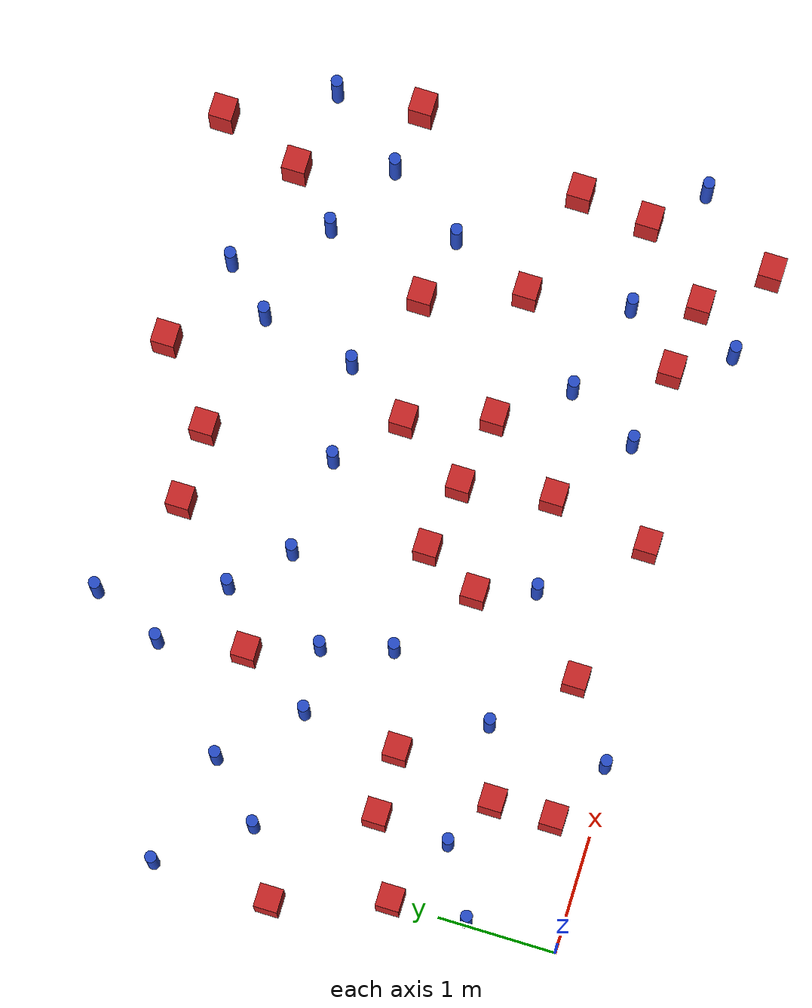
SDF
<sdf version="1.6">
 <model name="dense_91">
  <model name="pole_obstacle7">
   <static>true</static>
   <pose>1.28148390467 2.54067466043 -9.47619616065e-06 5.49618799737e-07 2.36310414062e-07 -1.55090534798e-07</pose>
   <link name="link">
    <pose>0 0 0.3 0 -0 0</pose>
    <inertial>
     <mass>1</mass>
     <inertia><ixx>0.145833</ixx><ixy>0</ixy><ixz>0</ixz><iyy>0.145833</iyy><iyz>0</iyz><izz>0.125</izz></inertia>
    </inertial>
    <collision name="collision">
     <geometry><cylinder><radius>0.05</radius><length>.6</length></cylinder></geometry>
    </collision>
    <visual name="visual">
     <geometry><cylinder><radius>0.05</radius><length>.6</length></cylinder></geometry>
     <material>
      <script><name>Gazebo/Blue</name><uri>file://media/materials/scripts/gazebo.material</uri></script>
     </material>
    </visual>
   </link>
  </model>
  <model name="pole_obstacle8">
   <static>true</static>
   <pose>4.49271938072 1.20656076858 -9.47619616065e-06 5.49618799738e-07 2.36310414071e-07 -1.55090534796e-07</pose>
   <link name="link">
    <pose>0 0 0.3 0 -0 0</pose>
    <inertial>
     <mass>1</mass>
     <inertia><ixx>0.145833</ixx><ixy>0</ixy><ixz>0</ixz><iyy>0.145833</iyy><iyz>0</iyz><izz>0.125</izz></inertia>
    </inertial>
    <collision name="collision">
     <geometry><cylinder><radius>0.05</radius><length>.6</length></cylinder></geometry>
    </collision>
    <visual name="visual">
     <geometry><cylinder><radius>0.05</radius><length>.6</length></cylinder></geometry>
     <material>
      <script><name>Gazebo/Blue</name><uri>file://media/materials/scripts/gazebo.material</uri></script>
     </material>
    </visual>
   </link>
  </model>
  <model name="square_post_obstacle8">
   <static>true</static>
   <pose>-0.286140557793 2.35264386809 -6.11067671241e-07 -5.50515727128e-06 -8.79689657224e-07 2.37013304536e-05</pose>
   <link name="link">
    <pose>0 0 0.25 0 -0 0</pose>
    <inertial>
     <mass>100</mass>
     <inertia>
      <ixx>0.166667</ixx>
      <ixy>0</ixy>
      <ixz>0</ixz>
      <iyy>0.166667</iyy>
      <iyz>0</iyz>
      <izz>0.166667</izz>
     </inertia>
    </inertial>
    <collision name="collision"><geometry><box><size>.2 .2 .5</size></box></geometry></collision>
    <visual name="visual">
     <geometry><box><size>.2 .2 .5</size></box></geometry>
     <material>
      <script><name>Gazebo/Red</name><uri>file://media/materials/scripts/gazebo.material</uri></script>
     </material>
    </visual>
   </link>
  </model>
  <model name="square_post_obstacle9">
   <static>true</static>
   <pose>3.46107579116 1.86878623679 -6.11067671241e-07 -5.50515727128e-06 -8.79689657224e-07 2.37013304536e-05</pose>
   <link name="link">
    <pose>0 0 0.25 0 -0 0</pose>
    <inertial>
     <mass>100</mass>
     <inertia>
      <ixx>0.166667</ixx>
      <ixy>0</ixy>
      <ixz>0</ixz>
      <iyy>0.166667</iyy>
      <iyz>0</iyz>
      <izz>0.166667</izz>
     </inertia>
    </inertial>
    <collision name="collision"><geometry><box><size>.2 .2 .5</size></box></geometry></collision>
    <visual name="visual">
     <geometry><box><size>.2 .2 .5</size></box></geometry>
     <material>
      <script><name>Gazebo/Red</name><uri>file://media/materials/scripts/gazebo.material</uri></script>
     </material>
    </visual>
   </link>
  </model>
  <model name="square_post_obstacle15">
   <static>true</static>
   <pose>2.18290450991 0.485048576799 -6.11067671241e-07 -5.50515727128e-06 -8.79689657224e-07 2.37013304536e-05</pose>
   <link name="link">
    <pose>0 0 0.25 0 -0 0</pose>
    <inertial>
     <mass>100</mass>
     <inertia>
      <ixx>0.166667</ixx>
      <ixy>0</ixy>
      <ixz>0</ixz>
      <iyy>0.166667</iyy>
      <iyz>0</iyz>
      <izz>0.166667</izz>
     </inertia>
    </inertial>
    <collision name="collision"><geometry><box><size>.2 .2 .5</size></box></geometry></collision>
    <visual name="visual">
     <geometry><box><size>.2 .2 .5</size></box></geometry>
     <material>
      <script><name>Gazebo/Red</name><uri>file://media/materials/scripts/gazebo.material</uri></script>
     </material>
    </visual>
   </link>
  </model>
  <model name="square_post_obstacle18">
   <static>true</static>
   <pose>5.16448898681 1.8074265908 -6.11067671241e-07 -5.50515727128e-06 -8.79689657224e-07 2.37013304536e-05</pose>
   <link name="link">
    <pose>0 0 0.25 0 -0 0</pose>
    <inertial>
     <mass>100</mass>
     <inertia>
      <ixx>0.166667</ixx>
      <ixy>0</ixy>
      <ixz>0</ixz>
      <iyy>0.166667</iyy>
      <iyz>0</iyz>
      <izz>0.166667</izz>
     </inertia>
    </inertial>
    <collision name="collision"><geometry><box><size>.2 .2 .5</size></box></geometry></collision>
    <visual name="visual">
     <geometry><box><size>.2 .2 .5</size></box></geometry>
     <material>
      <script><name>Gazebo/Red</name><uri>file://media/materials/scripts/gazebo.material</uri></script>
     </material>
    </visual>
   </link>
  </model>
  <model name="pole_obstacle26">
   <static>true</static>
   <pose>6.34294631568 3.81378350283 -9.47619616065e-06 5.49618799738e-07 2.36310414051e-07 -1.55090534805e-07</pose>
   <link name="link">
    <pose>0 0 0.3 0 -0 0</pose>
    <inertial>
     <mass>1</mass>
     <inertia><ixx>0.145833</ixx><ixy>0</ixy><ixz>0</ixz><iyy>0.145833</iyy><iyz>0</iyz><izz>0.125</izz></inertia>
    </inertial>
    <collision name="collision">
     <geometry><cylinder><radius>0.05</radius><length>.6</length></cylinder></geometry>
    </collision>
    <visual name="visual">
     <geometry><cylinder><radius>0.05</radius><length>.6</length></cylinder></geometry>
     <material>
      <script><name>Gazebo/Blue</name><uri>file://media/materials/scripts/gazebo.material</uri></script>
     </material>
    </visual>
   </link>
  </model>
  <model name="pole_obstacle30">
   <static>true</static>
   <pose>-0.254075386701 3.35910105093 -9.47619616065e-06 5.49618799738e-07 2.36310414071e-07 -1.55090534795e-07</pose>
   <link name="link">
    <pose>0 0 0.3 0 -0 0</pose>
    <inertial>
     <mass>1</mass>
     <inertia><ixx>0.145833</ixx><ixy>0</ixy><ixz>0</ixz><iyy>0.145833</iyy><iyz>0</iyz><izz>0.125</izz></inertia>
    </inertial>
    <collision name="collision">
     <geometry><cylinder><radius>0.05</radius><length>.6</length></cylinder></geometry>
    </collision>
    <visual name="visual">
     <geometry><cylinder><radius>0.05</radius><length>.6</length></cylinder></geometry>
     <material>
      <script><name>Gazebo/Blue</name><uri>file://media/materials/scripts/gazebo.material</uri></script>
     </material>
    </visual>
   </link>
  </model>
  <model name="square_post_obstacle23">
   <static>true</static>
   <pose>6.03022967754 1.00688846169 -6.11067671241e-07 -5.50515727128e-06 -8.79689657224e-07 2.37013304536e-05</pose>
   <link name="link">
    <pose>0 0 0.25 0 -0 0</pose>
    <inertial>
     <mass>100</mass>
     <inertia>
      <ixx>0.166667</ixx>
      <ixy>0</ixy>
      <ixz>0</ixz>
      <iyy>0.166667</iyy>
      <iyz>0</iyz>
      <izz>0.166667</izz>
     </inertia>
    </inertial>
    <collision name="collision"><geometry><box><size>.2 .2 .5</size></box></geometry></collision>
    <visual name="visual">
     <geometry><box><size>.2 .2 .5</size></box></geometry>
     <material>
      <script><name>Gazebo/Red</name><uri>file://media/materials/scripts/gazebo.material</uri></script>
     </material>
    </visual>
   </link>
  </model>
  <model name="square_post_obstacle24">
   <static>true</static>
   <pose>3.91992662925 4.54840092076 -6.11067671241e-07 -5.50515727128e-06 -8.79689657224e-07 2.37013304536e-05</pose>
   <link name="link">
    <pose>0 0 0.25 0 -0 0</pose>
    <inertial>
     <mass>100</mass>
     <inertia>
      <ixx>0.166667</ixx>
      <ixy>0</ixy>
      <ixz>0</ixz>
      <iyy>0.166667</iyy>
      <iyz>0</iyz>
      <izz>0.166667</izz>
     </inertia>
    </inertial>
    <collision name="collision"><geometry><box><size>.2 .2 .5</size></box></geometry></collision>
    <visual name="visual">
     <geometry><box><size>.2 .2 .5</size></box></geometry>
     <material>
      <script><name>Gazebo/Red</name><uri>file://media/materials/scripts/gazebo.material</uri></script>
     </material>
    </visual>
   </link>
  </model>
  <model name="pole_obstacle32">
   <static>true</static>
   <pose>4.70250894712 4.22878262935 -9.47619616065e-06 5.49618799737e-07 2.36310414037e-07 -1.55090534814e-07</pose>
   <link name="link">
    <pose>0 0 0.3 0 -0 0</pose>
    <inertial>
     <mass>1</mass>
     <inertia><ixx>0.145833</ixx><ixy>0</ixy><ixz>0</ixz><iyy>0.145833</iyy><iyz>0</iyz><izz>0.125</izz></inertia>
    </inertial>
    <collision name="collision">
     <geometry><cylinder><radius>0.05</radius><length>.6</length></cylinder></geometry>
    </collision>
    <visual name="visual">
     <geometry><cylinder><radius>0.05</radius><length>.6</length></cylinder></geometry>
     <material>
      <script><name>Gazebo/Blue</name><uri>file://media/materials/scripts/gazebo.material</uri></script>
     </material>
    </visual>
   </link>
  </model>
  <model name="pole_obstacle51">
   <static>true</static>
   <pose>3.35716697785 2.93258683462 -9.47619616065e-06 5.49618799737e-07 2.36310414051e-07 -1.55090534807e-07</pose>
   <link name="link">
    <pose>0 0 0.3 0 -0 0</pose>
    <inertial>
     <mass>1</mass>
     <inertia><ixx>0.145833</ixx><ixy>0</ixy><ixz>0</ixz><iyy>0.145833</iyy><iyz>0</iyz><izz>0.125</izz></inertia>
    </inertial>
    <collision name="collision">
     <geometry><cylinder><radius>0.05</radius><length>.6</length></cylinder></geometry>
    </collision>
    <visual name="visual">
     <geometry><cylinder><radius>0.05</radius><length>.6</length></cylinder></geometry>
     <material>
      <script><name>Gazebo/Blue</name><uri>file://media/materials/scripts/gazebo.material</uri></script>
     </material>
    </visual>
   </link>
  </model>
  <model name="square_post_obstacle43">
   <static>true</static>
   <pose>3.304013573 4.02637712108 -6.11067671241e-07 -5.50515727128e-06 -8.79689657224e-07 2.37013304536e-05</pose>
   <link name="link">
    <pose>0 0 0.25 0 -0 0</pose>
    <inertial>
     <mass>100</mass>
     <inertia>
      <ixx>0.166667</ixx>
      <ixy>0</ixy>
      <ixz>0</ixz>
      <iyy>0.166667</iyy>
      <iyz>0</iyz>
      <izz>0.166667</izz>
     </inertia>
    </inertial>
    <collision name="collision"><geometry><box><size>.2 .2 .5</size></box></geometry></collision>
    <visual name="visual">
     <geometry><box><size>.2 .2 .5</size></box></geometry>
     <material>
      <script><name>Gazebo/Red</name><uri>file://media/materials/scripts/gazebo.material</uri></script>
     </material>
    </visual>
   </link>
  </model>
  <model name="pole_obstacle65">
   <static>true</static>
   <pose>1.62377398613 1.05744448079 -9.47619616065e-06 5.49618799737e-07 2.36310414065e-07 -1.55090534798e-07</pose>
   <link name="link">
    <pose>0 0 0.3 0 -0 0</pose>
    <inertial>
     <mass>1</mass>
     <inertia><ixx>0.145833</ixx><ixy>0</ixy><ixz>0</ixz><iyy>0.145833</iyy><iyz>0</iyz><izz>0.125</izz></inertia>
    </inertial>
    <collision name="collision">
     <geometry><cylinder><radius>0.05</radius><length>.6</length></cylinder></geometry>
    </collision>
    <visual name="visual">
     <geometry><cylinder><radius>0.05</radius><length>.6</length></cylinder></geometry>
     <material>
      <script><name>Gazebo/Blue</name><uri>file://media/materials/scripts/gazebo.material</uri></script>
     </material>
    </visual>
   </link>
  </model>
  <model name="square_post_obstacle51">
   <static>true</static>
   <pose>4.87174644147 2.63009799008 -6.11067671241e-07 -5.50515727128e-06 -8.79689657224e-07 2.37013304536e-05</pose>
   <link name="link">
    <pose>0 0 0.25 0 -0 0</pose>
    <inertial>
     <mass>100</mass>
     <inertia>
      <ixx>0.166667</ixx>
      <ixy>0</ixy>
      <ixz>0</ixz>
      <iyy>0.166667</iyy>
      <iyz>0</iyz>
      <izz>0.166667</izz>
     </inertia>
    </inertial>
    <collision name="collision"><geometry><box><size>.2 .2 .5</size></box></geometry></collision>
    <visual name="visual">
     <geometry><box><size>.2 .2 .5</size></box></geometry>
     <material>
      <script><name>Gazebo/Red</name><uri>file://media/materials/scripts/gazebo.material</uri></script>
     </material>
    </visual>
   </link>
  </model>
  <model name="pole_obstacle75">
   <static>true</static>
   <pose>2.79825569041 1.00365107748 -9.4761961606e-06 5.49618799729e-07 2.36310413997e-07 -1.55090534826e-07</pose>
   <link name="link">
    <pose>0 0 0.3 0 -0 0</pose>
    <inertial>
     <mass>1</mass>
     <inertia><ixx>0.145833</ixx><ixy>0</ixy><ixz>0</ixz><iyy>0.145833</iyy><iyz>0</iyz><izz>0.125</izz></inertia>
    </inertial>
    <collision name="collision">
     <geometry><cylinder><radius>0.05</radius><length>.6</length></cylinder></geometry>
    </collision>
    <visual name="visual">
     <geometry><cylinder><radius>0.05</radius><length>.6</length></cylinder></geometry>
     <material>
      <script><name>Gazebo/Blue</name><uri>file://media/materials/scripts/gazebo.material</uri></script>
     </material>
    </visual>
   </link>
  </model>
  <model name="square_post_obstacle65">
   <static>true</static>
   <pose>3.84141606136 2.47230687507 -6.11067671241e-07 -5.50515727128e-06 -8.79689657224e-07 2.37013304536e-05</pose>
   <link name="link">
    <pose>0 0 0.25 0 -0 0</pose>
    <inertial>
     <mass>100</mass>
     <inertia>
      <ixx>0.166667</ixx>
      <ixy>0</ixy>
      <ixz>0</ixz>
      <iyy>0.166667</iyy>
      <iyz>0</iyz>
      <izz>0.166667</izz>
     </inertia>
    </inertial>
    <collision name="collision"><geometry><box><size>.2 .2 .5</size></box></geometry></collision>
    <visual name="visual">
     <geometry><box><size>.2 .2 .5</size></box></geometry>
     <material>
      <script><name>Gazebo/Red</name><uri>file://media/materials/scripts/gazebo.material</uri></script>
     </material>
    </visual>
   </link>
  </model>
  <model name="square_post_obstacle69">
   <static>true</static>
   <pose>1.02494783455 0.850285304926 -6.11067671241e-07 -5.50515727128e-06 -8.79689657224e-07 2.37013304536e-05</pose>
   <link name="link">
    <pose>0 0 0.25 0 -0 0</pose>
    <inertial>
     <mass>100</mass>
     <inertia>
      <ixx>0.166667</ixx>
      <ixy>0</ixy>
      <ixz>0</ixz>
      <iyy>0.166667</iyy>
      <iyz>0</iyz>
      <izz>0.166667</izz>
     </inertia>
    </inertial>
    <collision name="collision"><geometry><box><size>.2 .2 .5</size></box></geometry></collision>
    <visual name="visual">
     <geometry><box><size>.2 .2 .5</size></box></geometry>
     <material>
      <script><name>Gazebo/Red</name><uri>file://media/materials/scripts/gazebo.material</uri></script>
     </material>
    </visual>
   </link>
  </model>
  <model name="pole_obstacle82">
   <static>true</static>
   <pose>0.588367943741 1.09892093072 -9.47619616065e-06 5.49618799738e-07 2.36310414061e-07 -1.55090534801e-07</pose>
   <link name="link">
    <pose>0 0 0.3 0 -0 0</pose>
    <inertial>
     <mass>1</mass>
     <inertia><ixx>0.145833</ixx><ixy>0</ixy><ixz>0</ixz><iyy>0.145833</iyy><iyz>0</iyz><izz>0.125</izz></inertia>
    </inertial>
    <collision name="collision">
     <geometry><cylinder><radius>0.05</radius><length>.6</length></cylinder></geometry>
    </collision>
    <visual name="visual">
     <geometry><cylinder><radius>0.05</radius><length>.6</length></cylinder></geometry>
     <material>
      <script><name>Gazebo/Blue</name><uri>file://media/materials/scripts/gazebo.material</uri></script>
     </material>
    </visual>
   </link>
  </model>
  <model name="square_post_obstacle73">
   <static>true</static>
   <pose>0.00804372510997 1.41056328622 -6.11067671241e-07 -5.50515727128e-06 -8.79689657224e-07 2.37013304536e-05</pose>
   <link name="link">
    <pose>0 0 0.25 0 -0 0</pose>
    <inertial>
     <mass>100</mass>
     <inertia>
      <ixx>0.166667</ixx>
      <ixy>0</ixy>
      <ixz>0</ixz>
      <iyy>0.166667</iyy>
      <iyz>0</iyz>
      <izz>0.166667</izz>
     </inertia>
    </inertial>
    <collision name="collision"><geometry><box><size>.2 .2 .5</size></box></geometry></collision>
    <visual name="visual">
     <geometry><box><size>.2 .2 .5</size></box></geometry>
     <material>
      <script><name>Gazebo/Red</name><uri>file://media/materials/scripts/gazebo.material</uri></script>
     </material>
    </visual>
   </link>
  </model>
  <model name="pole_obstacle87">
   <static>true</static>
   <pose>5.4332525018 2.49948121387 -9.47619616065e-06 5.49618799738e-07 2.36310414051e-07 -1.55090534805e-07</pose>
   <link name="link">
    <pose>0 0 0.3 0 -0 0</pose>
    <inertial>
     <mass>1</mass>
     <inertia><ixx>0.145833</ixx><ixy>0</ixy><ixz>0</ixz><iyy>0.145833</iyy><iyz>0</iyz><izz>0.125</izz></inertia>
    </inertial>
    <collision name="collision">
     <geometry><cylinder><radius>0.05</radius><length>.6</length></cylinder></geometry>
    </collision>
    <visual name="visual">
     <geometry><cylinder><radius>0.05</radius><length>.6</length></cylinder></geometry>
     <material>
      <script><name>Gazebo/Blue</name><uri>file://media/materials/scripts/gazebo.material</uri></script>
     </material>
    </visual>
   </link>
  </model>
  <model name="pole_obstacle89">
   <static>true</static>
   <pose>0.71544250455 3.12018920715 -9.47619616065e-06 5.49618799737e-07 2.36310414066e-07 -1.55090534797e-07</pose>
   <link name="link">
    <pose>0 0 0.3 0 -0 0</pose>
    <inertial>
     <mass>1</mass>
     <inertia><ixx>0.145833</ixx><ixy>0</ixy><ixz>0</ixz><iyy>0.145833</iyy><iyz>0</iyz><izz>0.125</izz></inertia>
    </inertial>
    <collision name="collision">
     <geometry><cylinder><radius>0.05</radius><length>.6</length></cylinder></geometry>
    </collision>
    <visual name="visual">
     <geometry><cylinder><radius>0.05</radius><length>.6</length></cylinder></geometry>
     <material>
      <script><name>Gazebo/Blue</name><uri>file://media/materials/scripts/gazebo.material</uri></script>
     </material>
    </visual>
   </link>
  </model>
  <model name="square_post_obstacle84">
   <static>true</static>
   <pose>5.479542751 0.405188221135 -6.11067671241e-07 -5.50515727128e-06 -8.79689657224e-07 2.37013304536e-05</pose>
   <link name="link">
    <pose>0 0 0.25 0 -0 0</pose>
    <inertial>
     <mass>100</mass>
     <inertia>
      <ixx>0.166667</ixx>
      <ixy>0</ixy>
      <ixz>0</ixz>
      <iyy>0.166667</iyy>
      <iyz>0</iyz>
      <izz>0.166667</izz>
     </inertia>
    </inertial>
    <collision name="collision"><geometry><box><size>.2 .2 .5</size></box></geometry></collision>
    <visual name="visual">
     <geometry><box><size>.2 .2 .5</size></box></geometry>
     <material>
      <script><name>Gazebo/Red</name><uri>file://media/materials/scripts/gazebo.material</uri></script>
     </material>
    </visual>
   </link>
  </model>
  <model name="square_post_obstacle85">
   <static>true</static>
   <pose>2.87400250664 1.97037312836 -6.11067671241e-07 -5.50515727128e-06 -8.79689657224e-07 2.37013304536e-05</pose>
   <link name="link">
    <pose>0 0 0.25 0 -0 0</pose>
    <inertial>
     <mass>100</mass>
     <inertia>
      <ixx>0.166667</ixx>
      <ixy>0</ixy>
      <ixz>0</ixz>
      <iyy>0.166667</iyy>
      <iyz>0</iyz>
      <izz>0.166667</izz>
     </inertia>
    </inertial>
    <collision name="collision"><geometry><box><size>.2 .2 .5</size></box></geometry></collision>
    <visual name="visual">
     <geometry><box><size>.2 .2 .5</size></box></geometry>
     <material>
      <script><name>Gazebo/Red</name><uri>file://media/materials/scripts/gazebo.material</uri></script>
     </material>
    </visual>
   </link>
  </model>
  <model name="pole_obstacle99">
   <static>true</static>
   <pose>0.0323872886668 0.772303756373 -9.47619616065e-06 5.49618799737e-07 2.36310414057e-07 -1.55090534801e-07</pose>
   <link name="link">
    <pose>0 0 0.3 0 -0 0</pose>
    <inertial>
     <mass>1</mass>
     <inertia><ixx>0.145833</ixx><ixy>0</ixy><ixz>0</ixz><iyy>0.145833</iyy><iyz>0</iyz><izz>0.125</izz></inertia>
    </inertial>
    <collision name="collision">
     <geometry><cylinder><radius>0.05</radius><length>.6</length></cylinder></geometry>
    </collision>
    <visual name="visual">
     <geometry><cylinder><radius>0.05</radius><length>.6</length></cylinder></geometry>
     <material>
      <script><name>Gazebo/Blue</name><uri>file://media/materials/scripts/gazebo.material</uri></script>
     </material>
    </visual>
   </link>
  </model>
  <model name="square_post_obstacle94">
   <static>true</static>
   <pose>3.41950850616 0.244072524824 -6.11067671241e-07 -5.50515727128e-06 -8.79689657224e-07 2.37013304536e-05</pose>
   <link name="link">
    <pose>0 0 0.25 0 -0 0</pose>
    <inertial>
     <mass>100</mass>
     <inertia>
      <ixx>0.166667</ixx>
      <ixy>0</ixy>
      <ixz>0</ixz>
      <iyy>0.166667</iyy>
      <iyz>0</iyz>
      <izz>0.166667</izz>
     </inertia>
    </inertial>
    <collision name="collision"><geometry><box><size>.2 .2 .5</size></box></geometry></collision>
    <visual name="visual">
     <geometry><box><size>.2 .2 .5</size></box></geometry>
     <material>
      <script><name>Gazebo/Red</name><uri>file://media/materials/scripts/gazebo.material</uri></script>
     </material>
    </visual>
   </link>
  </model>
  <model name="square_post_obstacle99">
   <static>true</static>
   <pose>6.09818760231 1.62147928227 -6.11067671241e-07 -5.50515727128e-06 -8.79689657224e-07 2.37013304536e-05</pose>
   <link name="link">
    <pose>0 0 0.25 0 -0 0</pose>
    <inertial>
     <mass>100</mass>
     <inertia>
      <ixx>0.166667</ixx>
      <ixy>0</ixy>
      <ixz>0</ixz>
      <iyy>0.166667</iyy>
      <iyz>0</iyz>
      <izz>0.166667</izz>
     </inertia>
    </inertial>
    <collision name="collision"><geometry><box><size>.2 .2 .5</size></box></geometry></collision>
    <visual name="visual">
     <geometry><box><size>.2 .2 .5</size></box></geometry>
     <material>
      <script><name>Gazebo/Red</name><uri>file://media/materials/scripts/gazebo.material</uri></script>
     </material>
    </visual>
   </link>
  </model>
  <model name="square_post_obstacle100">
   <static>true</static>
   <pose>1.03532893338 0.333807394611 -6.11067671241e-07 -5.50515727128e-06 -8.79689657224e-07 2.37013304536e-05</pose>
   <link name="link">
    <pose>0 0 0.25 0 -0 0</pose>
    <inertial>
     <mass>100</mass>
     <inertia>
      <ixx>0.166667</ixx>
      <ixy>0</ixy>
      <ixz>0</ixz>
      <iyy>0.166667</iyy>
      <iyz>0</iyz>
      <izz>0.166667</izz>
     </inertia>
    </inertial>
    <collision name="collision"><geometry><box><size>.2 .2 .5</size></box></geometry></collision>
    <visual name="visual">
     <geometry><box><size>.2 .2 .5</size></box></geometry>
     <material>
      <script><name>Gazebo/Red</name><uri>file://media/materials/scripts/gazebo.material</uri></script>
     </material>
    </visual>
   </link>
  </model>
  <model name="square_post_obstacle101">
   <static>true</static>
   <pose>6.40490344487 3.08724426789 -6.11067671241e-07 -5.50515727128e-06 -8.79689657224e-07 2.37013304536e-05</pose>
   <link name="link">
    <pose>0 0 0.25 0 -0 0</pose>
    <inertial>
     <mass>100</mass>
     <inertia>
      <ixx>0.166667</ixx>
      <ixy>0</ixy>
      <ixz>0</ixz>
      <iyy>0.166667</iyy>
      <iyz>0</iyz>
      <izz>0.166667</izz>
     </inertia>
    </inertial>
    <collision name="collision"><geometry><box><size>.2 .2 .5</size></box></geometry></collision>
    <visual name="visual">
     <geometry><box><size>.2 .2 .5</size></box></geometry>
     <material>
      <script><name>Gazebo/Red</name><uri>file://media/materials/scripts/gazebo.material</uri></script>
     </material>
    </visual>
   </link>
  </model>
  <model name="square_post_obstacle107">
   <static>true</static>
   <pose>2.63573066897 1.49112370913 -6.11067671241e-07 -5.50515727128e-06 -8.79689657224e-07 2.37013304536e-05</pose>
   <link name="link">
    <pose>0 0 0.25 0 -0 0</pose>
    <inertial>
     <mass>100</mass>
     <inertia>
      <ixx>0.166667</ixx>
      <ixy>0</ixy>
      <ixz>0</ixz>
      <iyy>0.166667</iyy>
      <iyz>0</iyz>
      <izz>0.166667</izz>
     </inertia>
    </inertial>
    <collision name="collision"><geometry><box><size>.2 .2 .5</size></box></geometry></collision>
    <visual name="visual">
     <geometry><box><size>.2 .2 .5</size></box></geometry>
     <material>
      <script><name>Gazebo/Red</name><uri>file://media/materials/scripts/gazebo.material</uri></script>
     </material>
    </visual>
   </link>
  </model>
  <model name="square_post_obstacle112">
   <static>true</static>
   <pose>3.58019920946 1.09554158535 -6.11067671241e-07 -5.50515727128e-06 -8.79689657224e-07 2.37013304536e-05</pose>
   <link name="link">
    <pose>0 0 0.25 0 -0 0</pose>
    <inertial>
     <mass>100</mass>
     <inertia>
      <ixx>0.166667</ixx>
      <ixy>0</ixy>
      <ixz>0</ixz>
      <iyy>0.166667</iyy>
      <iyz>0</iyz>
      <izz>0.166667</izz>
     </inertia>
    </inertial>
    <collision name="collision"><geometry><box><size>.2 .2 .5</size></box></geometry></collision>
    <visual name="visual">
     <geometry><box><size>.2 .2 .5</size></box></geometry>
     <material>
      <script><name>Gazebo/Red</name><uri>file://media/materials/scripts/gazebo.material</uri></script>
     </material>
    </visual>
   </link>
  </model>
  <model name="pole_obstacle121">
   <static>true</static>
   <pose>5.21948381396 3.52625773737 -9.47619616065e-06 5.49618799738e-07 2.36310414051e-07 -1.55090534805e-07</pose>
   <link name="link">
    <pose>0 0 0.3 0 -0 0</pose>
    <inertial>
     <mass>1</mass>
     <inertia><ixx>0.145833</ixx><ixy>0</ixy><ixz>0</ixz><iyy>0.145833</iyy><iyz>0</iyz><izz>0.125</izz></inertia>
    </inertial>
    <collision name="collision">
     <geometry><cylinder><radius>0.05</radius><length>.6</length></cylinder></geometry>
    </collision>
    <visual name="visual">
     <geometry><cylinder><radius>0.05</radius><length>.6</length></cylinder></geometry>
     <material>
      <script><name>Gazebo/Blue</name><uri>file://media/materials/scripts/gazebo.material</uri></script>
     </material>
    </visual>
   </link>
  </model>
  <model name="square_post_obstacle122">
   <static>true</static>
   <pose>5.879608209 4.66003324864 -6.11067671241e-07 -5.50515727128e-06 -8.79689657224e-07 2.37013304536e-05</pose>
   <link name="link">
    <pose>0 0 0.25 0 -0 0</pose>
    <inertial>
     <mass>100</mass>
     <inertia>
      <ixx>0.166667</ixx>
      <ixy>0</ixy>
      <ixz>0</ixz>
      <iyy>0.166667</iyy>
      <iyz>0</iyz>
      <izz>0.166667</izz>
     </inertia>
    </inertial>
    <collision name="collision"><geometry><box><size>.2 .2 .5</size></box></geometry></collision>
    <visual name="visual">
     <geometry><box><size>.2 .2 .5</size></box></geometry>
     <material>
      <script><name>Gazebo/Red</name><uri>file://media/materials/scripts/gazebo.material</uri></script>
     </material>
    </visual>
   </link>
  </model>
  <model name="square_post_obstacle129">
   <static>true</static>
   <pose>2.66013791886 4.02760204925 -6.11067671241e-07 -5.50515727128e-06 -8.79689657224e-07 2.37013304536e-05</pose>
   <link name="link">
    <pose>0 0 0.25 0 -0 0</pose>
    <inertial>
     <mass>100</mass>
     <inertia>
      <ixx>0.166667</ixx>
      <ixy>0</ixy>
      <ixz>0</ixz>
      <iyy>0.166667</iyy>
      <iyz>0</iyz>
      <izz>0.166667</izz>
     </inertia>
    </inertial>
    <collision name="collision"><geometry><box><size>.2 .2 .5</size></box></geometry></collision>
    <visual name="visual">
     <geometry><box><size>.2 .2 .5</size></box></geometry>
     <material>
      <script><name>Gazebo/Red</name><uri>file://media/materials/scripts/gazebo.material</uri></script>
     </material>
    </visual>
   </link>
  </model>
  <model name="pole_obstacle137">
   <static>true</static>
   <pose>2.52163070391 3.02712835651 -9.47619616065e-06 5.49618799737e-07 2.36310414051e-07 -1.55090534807e-07</pose>
   <link name="link">
    <pose>0 0 0.3 0 -0 0</pose>
    <inertial>
     <mass>1</mass>
     <inertia><ixx>0.145833</ixx><ixy>0</ixy><ixz>0</ixz><iyy>0.145833</iyy><iyz>0</iyz><izz>0.125</izz></inertia>
    </inertial>
    <collision name="collision">
     <geometry><cylinder><radius>0.05</radius><length>.6</length></cylinder></geometry>
    </collision>
    <visual name="visual">
     <geometry><cylinder><radius>0.05</radius><length>.6</length></cylinder></geometry>
     <material>
      <script><name>Gazebo/Blue</name><uri>file://media/materials/scripts/gazebo.material</uri></script>
     </material>
    </visual>
   </link>
  </model>
  <model name="pole_obstacle141">
   <static>true</static>
   <pose>2.09531432436 3.4475018337 -9.47619616065e-06 5.49618799737e-07 2.36310414051e-07 -1.55090534807e-07</pose>
   <link name="link">
    <pose>0 0 0.3 0 -0 0</pose>
    <inertial>
     <mass>1</mass>
     <inertia><ixx>0.145833</ixx><ixy>0</ixy><ixz>0</ixz><iyy>0.145833</iyy><iyz>0</iyz><izz>0.125</izz></inertia>
    </inertial>
    <collision name="collision">
     <geometry><cylinder><radius>0.05</radius><length>.6</length></cylinder></geometry>
    </collision>
    <visual name="visual">
     <geometry><cylinder><radius>0.05</radius><length>.6</length></cylinder></geometry>
     <material>
      <script><name>Gazebo/Blue</name><uri>file://media/materials/scripts/gazebo.material</uri></script>
     </material>
    </visual>
   </link>
  </model>
  <model name="pole_obstacle142">
   <static>true</static>
   <pose>1.75295875146 4.47146683091 -9.47619616065e-06 5.49618799737e-07 2.36310414061e-07 -1.550905348e-07</pose>
   <link name="link">
    <pose>0 0 0.3 0 -0 0</pose>
    <inertial>
     <mass>1</mass>
     <inertia><ixx>0.145833</ixx><ixy>0</ixy><ixz>0</ixz><iyy>0.145833</iyy><iyz>0</iyz><izz>0.125</izz></inertia>
    </inertial>
    <collision name="collision">
     <geometry><cylinder><radius>0.05</radius><length>.6</length></cylinder></geometry>
    </collision>
    <visual name="visual">
     <geometry><cylinder><radius>0.05</radius><length>.6</length></cylinder></geometry>
     <material>
      <script><name>Gazebo/Blue</name><uri>file://media/materials/scripts/gazebo.material</uri></script>
     </material>
    </visual>
   </link>
  </model>
  <model name="pole_obstacle144">
   <static>true</static>
   <pose>1.98820349261 1.98571593071 -9.47619616065e-06 5.49618799737e-07 2.36310414065e-07 -1.55090534798e-07</pose>
   <link name="link">
    <pose>0 0 0.3 0 -0 0</pose>
    <inertial>
     <mass>1</mass>
     <inertia><ixx>0.145833</ixx><ixy>0</ixy><ixz>0</ixz><iyy>0.145833</iyy><iyz>0</iyz><izz>0.125</izz></inertia>
    </inertial>
    <collision name="collision">
     <geometry><cylinder><radius>0.05</radius><length>.6</length></cylinder></geometry>
    </collision>
    <visual name="visual">
     <geometry><cylinder><radius>0.05</radius><length>.6</length></cylinder></geometry>
     <material>
      <script><name>Gazebo/Blue</name><uri>file://media/materials/scripts/gazebo.material</uri></script>
     </material>
    </visual>
   </link>
  </model>
  <model name="pole_obstacle150">
   <static>true</static>
   <pose>5.16165120928 0.0162818071046 -9.47619616065e-06 5.49618799737e-07 2.36310414074e-07 -1.55090534793e-07</pose>
   <link name="link">
    <pose>0 0 0.3 0 -0 0</pose>
    <inertial>
     <mass>1</mass>
     <inertia><ixx>0.145833</ixx><ixy>0</ixy><ixz>0</ixz><iyy>0.145833</iyy><iyz>0</iyz><izz>0.125</izz></inertia>
    </inertial>
    <collision name="collision">
     <geometry><cylinder><radius>0.05</radius><length>.6</length></cylinder></geometry>
    </collision>
    <visual name="visual">
     <geometry><cylinder><radius>0.05</radius><length>.6</length></cylinder></geometry>
     <material>
      <script><name>Gazebo/Blue</name><uri>file://media/materials/scripts/gazebo.material</uri></script>
     </material>
    </visual>
   </link>
  </model>
  <model name="pole_obstacle153">
   <static>true</static>
   <pose>4.1645755932 3.01764296805 -9.47619616065e-06 5.49618799738e-07 2.36310414051e-07 -1.55090534805e-07</pose>
   <link name="link">
    <pose>0 0 0.3 0 -0 0</pose>
    <inertial>
     <mass>1</mass>
     <inertia><ixx>0.145833</ixx><ixy>0</ixy><ixz>0</ixz><iyy>0.145833</iyy><iyz>0</iyz><izz>0.125</izz></inertia>
    </inertial>
    <collision name="collision">
     <geometry><cylinder><radius>0.05</radius><length>.6</length></cylinder></geometry>
    </collision>
    <visual name="visual">
     <geometry><cylinder><radius>0.05</radius><length>.6</length></cylinder></geometry>
     <material>
      <script><name>Gazebo/Blue</name><uri>file://media/materials/scripts/gazebo.material</uri></script>
     </material>
    </visual>
   </link>
  </model>
  <model name="pole_obstacle156">
   <static>true</static>
   <pose>0.264594221144 2.6609066596 -9.47619616065e-06 5.49618799737e-07 2.36310414065e-07 -1.55090534798e-07</pose>
   <link name="link">
    <pose>0 0 0.3 0 -0 0</pose>
    <inertial>
     <mass>1</mass>
     <inertia><ixx>0.145833</ixx><ixy>0</ixy><ixz>0</ixz><iyy>0.145833</iyy><iyz>0</iyz><izz>0.125</izz></inertia>
    </inertial>
    <collision name="collision">
     <geometry><cylinder><radius>0.05</radius><length>.6</length></cylinder></geometry>
    </collision>
    <visual name="visual">
     <geometry><cylinder><radius>0.05</radius><length>.6</length></cylinder></geometry>
     <material>
      <script><name>Gazebo/Blue</name><uri>file://media/materials/scripts/gazebo.material</uri></script>
     </material>
    </visual>
   </link>
  </model>
  <model name="pole_obstacle163">
   <static>true</static>
   <pose>4.20235618574 0.60353743324 -9.47619616065e-06 5.49618799737e-07 2.36310414061e-07 -1.550905348e-07</pose>
   <link name="link">
    <pose>0 0 0.3 0 -0 0</pose>
    <inertial>
     <mass>1</mass>
     <inertia><ixx>0.145833</ixx><ixy>0</ixy><ixz>0</ixz><iyy>0.145833</iyy><iyz>0</iyz><izz>0.125</izz></inertia>
    </inertial>
    <collision name="collision">
     <geometry><cylinder><radius>0.05</radius><length>.6</length></cylinder></geometry>
    </collision>
    <visual name="visual">
     <geometry><cylinder><radius>0.05</radius><length>.6</length></cylinder></geometry>
     <material>
      <script><name>Gazebo/Blue</name><uri>file://media/materials/scripts/gazebo.material</uri></script>
     </material>
    </visual>
   </link>
  </model>
  <model name="square_post_obstacle156">
   <static>true</static>
   <pose>4.88539357469 0.473647851376 -6.11067671241e-07 -5.50515727128e-06 -8.79689657224e-07 2.37013304536e-05</pose>
   <link name="link">
    <pose>0 0 0.25 0 -0 0</pose>
    <inertial>
     <mass>100</mass>
     <inertia>
      <ixx>0.166667</ixx>
      <ixy>0</ixy>
      <ixz>0</ixz>
      <iyy>0.166667</iyy>
      <iyz>0</iyz>
      <izz>0.166667</izz>
     </inertia>
    </inertial>
    <collision name="collision"><geometry><box><size>.2 .2 .5</size></box></geometry></collision>
    <visual name="visual">
     <geometry><box><size>.2 .2 .5</size></box></geometry>
     <material>
      <script><name>Gazebo/Red</name><uri>file://media/materials/scripts/gazebo.material</uri></script>
     </material>
    </visual>
   </link>
  </model>
  <model name="pole_obstacle165">
   <static>true</static>
   <pose>1.49548700177 3.87255924342 -9.47619616065e-06 5.49618799737e-07 2.36310414062e-07 -1.55090534798e-07</pose>
   <link name="link">
    <pose>0 0 0.3 0 -0 0</pose>
    <inertial>
     <mass>1</mass>
     <inertia><ixx>0.145833</ixx><ixy>0</ixy><ixz>0</ixz><iyy>0.145833</iyy><iyz>0</iyz><izz>0.125</izz></inertia>
    </inertial>
    <collision name="collision">
     <geometry><cylinder><radius>0.05</radius><length>.6</length></cylinder></geometry>
    </collision>
    <visual name="visual">
     <geometry><cylinder><radius>0.05</radius><length>.6</length></cylinder></geometry>
     <material>
      <script><name>Gazebo/Blue</name><uri>file://media/materials/scripts/gazebo.material</uri></script>
     </material>
    </visual>
   </link>
  </model>
  <model name="square_post_obstacle159">
   <static>true</static>
   <pose>1.62621843156 3.14608144077 -6.11067671241e-07 -5.50515727128e-06 -8.79689657224e-07 2.37013304536e-05</pose>
   <link name="link">
    <pose>0 0 0.25 0 -0 0</pose>
    <inertial>
     <mass>100</mass>
     <inertia>
      <ixx>0.166667</ixx>
      <ixy>0</ixy>
      <ixz>0</ixz>
      <iyy>0.166667</iyy>
      <iyz>0</iyz>
      <izz>0.166667</izz>
     </inertia>
    </inertial>
    <collision name="collision"><geometry><box><size>.2 .2 .5</size></box></geometry></collision>
    <visual name="visual">
     <geometry><box><size>.2 .2 .5</size></box></geometry>
     <material>
      <script><name>Gazebo/Red</name><uri>file://media/materials/scripts/gazebo.material</uri></script>
     </material>
    </visual>
   </link>
  </model>
  <model name="pole_obstacle166">
   <static>true</static>
   <pose>1.57433191489 0.0516126716703 -9.47619616065e-06 5.49618799737e-07 2.36310414061e-07 -1.55090534801e-07</pose>
   <link name="link">
    <pose>0 0 0.3 0 -0 0</pose>
    <inertial>
     <mass>1</mass>
     <inertia><ixx>0.145833</ixx><ixy>0</ixy><ixz>0</ixz><iyy>0.145833</iyy><iyz>0</iyz><izz>0.125</izz></inertia>
    </inertial>
    <collision name="collision">
     <geometry><cylinder><radius>0.05</radius><length>.6</length></cylinder></geometry>
    </collision>
    <visual name="visual">
     <geometry><cylinder><radius>0.05</radius><length>.6</length></cylinder></geometry>
     <material>
      <script><name>Gazebo/Blue</name><uri>file://media/materials/scripts/gazebo.material</uri></script>
     </material>
    </visual>
   </link>
  </model>
  <model name="square_post_obstacle166">
   <static>true</static>
   <pose>4.07859456565 1.75791759399 -6.11067671241e-07 -5.50515727128e-06 -8.79689657224e-07 2.37013304536e-05</pose>
   <link name="link">
    <pose>0 0 0.25 0 -0 0</pose>
    <inertial>
     <mass>100</mass>
     <inertia>
      <ixx>0.166667</ixx>
      <ixy>0</ixy>
      <ixz>0</ixz>
      <iyy>0.166667</iyy>
      <iyz>0</iyz>
      <izz>0.166667</izz>
     </inertia>
    </inertial>
    <collision name="collision"><geometry><box><size>.2 .2 .5</size></box></geometry></collision>
    <visual name="visual">
     <geometry><box><size>.2 .2 .5</size></box></geometry>
     <material>
      <script><name>Gazebo/Red</name><uri>file://media/materials/scripts/gazebo.material</uri></script>
     </material>
    </visual>
   </link>
  </model>
  <model name="pole_obstacle174">
   <static>true</static>
   <pose>5.29815091333 0.94071135021 -9.47619616065e-06 5.49618799737e-07 2.36310414061e-07 -1.550905348e-07</pose>
   <link name="link">
    <pose>0 0 0.3 0 -0 0</pose>
    <inertial>
     <mass>1</mass>
     <inertia><ixx>0.145833</ixx><ixy>0</ixy><ixz>0</ixz><iyy>0.145833</iyy><iyz>0</iyz><izz>0.125</izz></inertia>
    </inertial>
    <collision name="collision">
     <geometry><cylinder><radius>0.05</radius><length>.6</length></cylinder></geometry>
    </collision>
    <visual name="visual">
     <geometry><cylinder><radius>0.05</radius><length>.6</length></cylinder></geometry>
     <material>
      <script><name>Gazebo/Blue</name><uri>file://media/materials/scripts/gazebo.material</uri></script>
     </material>
    </visual>
   </link>
  </model>
  <model name="square_post_obstacle173">
   <static>true</static>
   <pose>5.91182968081 -0.0839038143956 -6.11067671241e-07 -5.50515727128e-06 -8.79689657224e-07 2.37013304536e-05</pose>
   <link name="link">
    <pose>0 0 0.25 0 -0 0</pose>
    <inertial>
     <mass>100</mass>
     <inertia>
      <ixx>0.166667</ixx>
      <ixy>0</ixy>
      <ixz>0</ixz>
      <iyy>0.166667</iyy>
      <iyz>0</iyz>
      <izz>0.166667</izz>
     </inertia>
    </inertial>
    <collision name="collision"><geometry><box><size>.2 .2 .5</size></box></geometry></collision>
    <visual name="visual">
     <geometry><box><size>.2 .2 .5</size></box></geometry>
     <material>
      <script><name>Gazebo/Red</name><uri>file://media/materials/scripts/gazebo.material</uri></script>
     </material>
    </visual>
   </link>
  </model>
  <model name="pole_obstacle176">
   <static>true</static>
   <pose>6.41638071157 0.618670548504 -9.47619616065e-06 5.49618799737e-07 2.36310414061e-07 -1.550905348e-07</pose>
   <link name="link">
    <pose>0 0 0.3 0 -0 0</pose>
    <inertial>
     <mass>1</mass>
     <inertia><ixx>0.145833</ixx><ixy>0</ixy><ixz>0</ixz><iyy>0.145833</iyy><iyz>0</iyz><izz>0.125</izz></inertia>
    </inertial>
    <collision name="collision">
     <geometry><cylinder><radius>0.05</radius><length>.6</length></cylinder></geometry>
    </collision>
    <visual name="visual">
     <geometry><cylinder><radius>0.05</radius><length>.6</length></cylinder></geometry>
     <material>
      <script><name>Gazebo/Blue</name><uri>file://media/materials/scripts/gazebo.material</uri></script>
     </material>
    </visual>
   </link>
  </model>
  <model name="square_post_obstacle176">
   <static>true</static>
   <pose>1.20021178205 1.71956638887 -6.11067671241e-07 -5.50515727128e-06 -8.79689657224e-07 2.37013304536e-05</pose>
   <link name="link">
    <pose>0 0 0.25 0 -0 0</pose>
    <inertial>
     <mass>100</mass>
     <inertia>
      <ixx>0.166667</ixx>
      <ixy>0</ixy>
      <ixz>0</ixz>
      <iyy>0.166667</iyy>
      <iyz>0</iyz>
      <izz>0.166667</izz>
     </inertia>
    </inertial>
    <collision name="collision"><geometry><box><size>.2 .2 .5</size></box></geometry></collision>
    <visual name="visual">
     <geometry><box><size>.2 .2 .5</size></box></geometry>
     <material>
      <script><name>Gazebo/Red</name><uri>file://media/materials/scripts/gazebo.material</uri></script>
     </material>
    </visual>
   </link>
  </model>
  <model name="pole_obstacle189">
   <static>true</static>
   <pose>4.34606720305 3.82869813346 -9.47619616065e-06 5.49618799738e-07 2.36310414051e-07 -1.55090534805e-07</pose>
   <link name="link">
    <pose>0 0 0.3 0 -0 0</pose>
    <inertial>
     <mass>1</mass>
     <inertia><ixx>0.145833</ixx><ixy>0</ixy><ixz>0</ixz><iyy>0.145833</iyy><iyz>0</iyz><izz>0.125</izz></inertia>
    </inertial>
    <collision name="collision">
     <geometry><cylinder><radius>0.05</radius><length>.6</length></cylinder></geometry>
    </collision>
    <visual name="visual">
     <geometry><cylinder><radius>0.05</radius><length>.6</length></cylinder></geometry>
     <material>
      <script><name>Gazebo/Blue</name><uri>file://media/materials/scripts/gazebo.material</uri></script>
     </material>
    </visual>
   </link>
  </model>
  <model name="square_post_obstacle200">
   <static>true</static>
   <pose>5.6300599748 3.94927807603 -6.11067671241e-07 -5.50515727128e-06 -8.79689657224e-07 2.37013304536e-05</pose>
   <link name="link">
    <pose>0 0 0.25 0 -0 0</pose>
    <inertial>
     <mass>100</mass>
     <inertia>
      <ixx>0.166667</ixx>
      <ixy>0</ixy>
      <ixz>0</ixz>
      <iyy>0.166667</iyy>
      <iyz>0</iyz>
      <izz>0.166667</izz>
     </inertia>
    </inertial>
    <collision name="collision"><geometry><box><size>.2 .2 .5</size></box></geometry></collision>
    <visual name="visual">
     <geometry><box><size>.2 .2 .5</size></box></geometry>
     <material>
      <script><name>Gazebo/Red</name><uri>file://media/materials/scripts/gazebo.material</uri></script>
     </material>
    </visual>
   </link>
  </model>
  <model name="square_post_obstacle206">
   <static>true</static>
   <pose>0.643231694678 1.72088690238 -6.11067671241e-07 -5.50515727128e-06 -8.79689657224e-07 2.37013304536e-05</pose>
   <link name="link">
    <pose>0 0 0.25 0 -0 0</pose>
    <inertial>
     <mass>100</mass>
     <inertia>
      <ixx>0.166667</ixx>
      <ixy>0</ixy>
      <ixz>0</ixz>
      <iyy>0.166667</iyy>
      <iyz>0</iyz>
      <izz>0.166667</izz>
     </inertia>
    </inertial>
    <collision name="collision"><geometry><box><size>.2 .2 .5</size></box></geometry></collision>
    <visual name="visual">
     <geometry><box><size>.2 .2 .5</size></box></geometry>
     <material>
      <script><name>Gazebo/Red</name><uri>file://media/materials/scripts/gazebo.material</uri></script>
     </material>
    </visual>
   </link>
  </model>
  <model name="pole_obstacle201">
   <static>true</static>
   <pose>5.85260580024 3.1606544039 -9.47619616065e-06 5.49618799738e-07 2.36310414051e-07 -1.55090534805e-07</pose>
   <link name="link">
    <pose>0 0 0.3 0 -0 0</pose>
    <inertial>
     <mass>1</mass>
     <inertia><ixx>0.145833</ixx><ixy>0</ixy><ixz>0</ixz><iyy>0.145833</iyy><iyz>0</iyz><izz>0.125</izz></inertia>
    </inertial>
    <collision name="collision">
     <geometry><cylinder><radius>0.05</radius><length>.6</length></cylinder></geometry>
    </collision>
    <visual name="visual">
     <geometry><cylinder><radius>0.05</radius><length>.6</length></cylinder></geometry>
     <material>
      <script><name>Gazebo/Blue</name><uri>file://media/materials/scripts/gazebo.material</uri></script>
     </material>
    </visual>
   </link>
  </model>
  <model name="pole_obstacle213">
   <static>true</static>
   <pose>1.82706000939 2.57319002078 -9.4761961606e-06 5.49618799729e-07 2.36310414007e-07 -1.5509053482e-07</pose>
   <link name="link">
    <pose>0 0 0.3 0 -0 0</pose>
    <inertial>
     <mass>1</mass>
     <inertia><ixx>0.145833</ixx><ixy>0</ixy><ixz>0</ixz><iyy>0.145833</iyy><iyz>0</iyz><izz>0.125</izz></inertia>
    </inertial>
    <collision name="collision">
     <geometry><cylinder><radius>0.05</radius><length>.6</length></cylinder></geometry>
    </collision>
    <visual name="visual">
     <geometry><cylinder><radius>0.05</radius><length>.6</length></cylinder></geometry>
     <material>
      <script><name>Gazebo/Blue</name><uri>file://media/materials/scripts/gazebo.material</uri></script>
     </material>
    </visual>
   </link>
  </model>
 </model>
</sdf>
